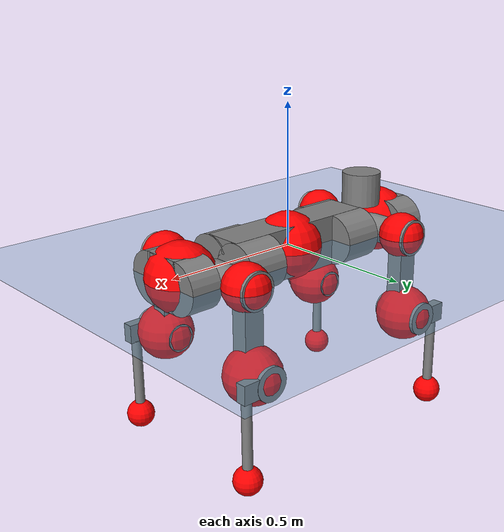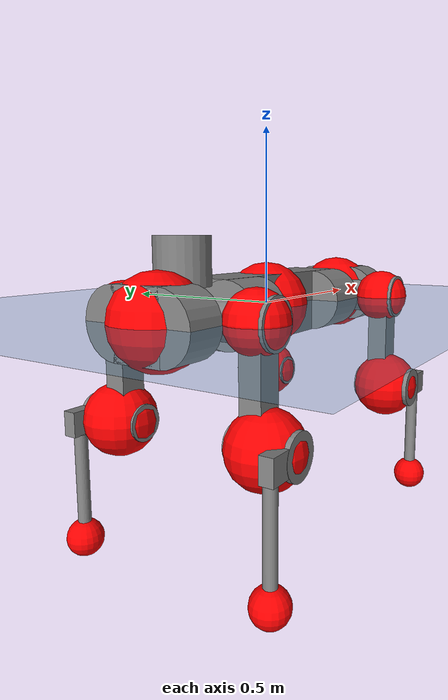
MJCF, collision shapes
<mujoco model="anymal_c">
  <compiler angle="radian" assetdir="assets" balanceinertia="true" inertiafromgeom="false"/>

  <option timestep="0.005" density="1.2" viscosity="2e-05"/>

  <size nkey="1"/>

  <visual>
    <quality shadowsize="8192"/>
    <map shadowclip="0.5"/>
  </visual>

  <default>
    <default class="/">
      <material specular="0" shininess="0.25"/>
      <geom contype="0" conaffinity="0" group="1" solref="-1000 -80"/>
      <site size="0.01 0.005 0.005" group="5"/>
      <general forcelimited="true" forcerange="-80 80" biastype="affine" gainprm="80" biasprm="0 -80 -2"/>
      <default class="anymal_c">
        <joint armature="0.01" damping="0.01" frictionloss="0.1"/>
        <default class="visual">
          <geom type="mesh" group="2"/>
          <default class="visual_zflip"/>
        </default>
        <default class="collision">
          <geom type="cylinder" group="3"/>
          <default class="foot">
            <geom size="0.03 0 0" type="sphere" condim="6" priority="1" friction="0.8 0.02 0.01" solimp="0.015 1 0.03"/>
          </default>
        </default>
      </default>
      <default class="reward_collision_sphere">
        <geom group="5" rgba="1 0 0 1"/>
      </default>
    </default>
  </default>

  <asset>
    <texture type="skybox" colorspace="auto" name="//unnamed_texture_0" builtin="gradient" rgb1="0.95 0.95 0.95" rgb2="0.95 0.95 0.95" width="100" height="600"/>
    <texture type="2d" colorspace="auto" name="texplane" builtin="checker" rgb1="0.345 0.575 0.748" rgb2="0.345 0.575 0.748" markrgb="1 1 1" width="512" height="512"/>
    <texture type="2d" colorspace="linear" name="base" file="base.png"/>
    <texture type="2d" colorspace="linear" name="top_shell" file="top_shell.png"/>
    <texture type="2d" colorspace="linear" name="bottom_shell" file="bottom_shell.png"/>
    <texture type="2d" colorspace="linear" name="remote" file="remote.png"/>
    <texture type="2d" colorspace="linear" name="hatch" file="hatch.png"/>
    <texture type="2d" colorspace="linear" name="handle" file="handle.png"/>
    <texture type="2d" colorspace="linear" name="face" file="face.png"/>
    <texture type="2d" colorspace="linear" name="battery" file="battery.png"/>
    <texture type="2d" colorspace="linear" name="lidar_cage" file="lidar_cage.png"/>
    <texture type="2d" colorspace="linear" name="depth_camera" file="depth_camera.png"/>
    <texture type="2d" colorspace="linear" name="wide_angle_camera" file="wide_angle_camera.png"/>
    <texture type="2d" colorspace="linear" name="lidar" file="lidar.png"/>
    <texture type="2d" colorspace="linear" name="drive" file="drive.png"/>
    <texture type="2d" colorspace="linear" name="hip_l" file="hip_l.png"/>
    <texture type="2d" colorspace="linear" name="shank_l" file="shank_l.png"/>
    <texture type="2d" colorspace="linear" name="foot" file="foot.png"/>
    <texture type="2d" colorspace="linear" name="thigh" file="thigh.png"/>
    <texture type="2d" colorspace="linear" name="shank_r" file="shank_r.png"/>
    <texture type="2d" colorspace="linear" name="hip_r" file="hip_r.png"/>
    <material name="MatPlane" class="/" texture="texplane" texuniform="true" texrepeat="2 2" specular="0.9" shininess="0.5"/>
    <material name="black_plastic" class="/" rgba="0.007 0.007 0.007 1"/>
    <material name="green" class="/" rgba="0.052 0.178 0.033 1"/>
    <material name="red" class="/" rgba="0.178 0.006 0.005 1"/>
    <material name="yellow" class="/" rgba="0.178 0.119 0.006 1"/>
    <material name="lwl" class="/" rgba="0.8 0.8 0.8 1"/>
    <material name="base" class="/" texture="base"/>
    <material name="top_shell" class="/" texture="top_shell"/>
    <material name="bottom_shell" class="/" texture="bottom_shell"/>
    <material name="hip_l" class="/" texture="hip_l"/>
    <material name="thigh" class="/" texture="thigh"/>
    <material name="shank_l" class="/" texture="shank_l"/>
    <material name="foot" class="/" texture="foot"/>
    <material name="hip_r" class="/" texture="hip_r"/>
    <material name="shank" class="/" texture="shank_r"/>
    <material name="hatch" class="/" texture="hatch"/>
    <material name="remote" class="/" texture="remote"/>
    <material name="handle" class="/" texture="handle"/>
    <material name="face" class="/" texture="face"/>
    <material name="depth_camera" class="/" texture="depth_camera"/>
    <material name="wide_angle_camera" class="/" texture="wide_angle_camera"/>
    <material name="battery" class="/" texture="battery"/>
    <material name="lidar_cage" class="/" texture="lidar_cage"/>
    <material name="lidar" class="/" texture="lidar"/>
    <material name="drive" class="/" texture="drive"/>
    <mesh name="base_0" class="/" file="base_0.obj"/>
    <mesh name="base_1" class="/" file="base_1.obj"/>
    <mesh name="base_2" class="/" file="base_2.obj"/>
    <mesh name="base_3" class="/" file="base_3.obj"/>
    <mesh name="base_4" class="/" file="base_4.obj"/>
    <mesh name="base_5" class="/" file="base_5.obj"/>
    <mesh name="top_shell" class="/" file="top_shell.obj"/>
    <mesh name="bottom_shell" class="/" file="bottom_shell.obj"/>
    <mesh name="remote" class="/" file="remote.obj"/>
    <mesh name="handle" class="/" file="handle.obj"/>
    <mesh name="face" class="/" file="face.obj"/>
    <mesh name="wide_angle_camera" class="/" file="wide_angle_camera.obj"/>
    <mesh name="depth_camera" class="/" file="depth_camera.obj"/>
    <mesh name="battery" class="/" file="battery.obj"/>
    <mesh name="lidar_cage" class="/" file="lidar_cage.obj"/>
    <mesh name="lidar" class="/" file="lidar.obj"/>
    <mesh name="drive" class="/" file="drive.obj"/>
    <mesh name="hip_l" class="/" file="hip_l.obj"/>
    <mesh name="thigh" class="/" file="thigh.obj"/>
    <mesh name="shank_l" class="/" file="shank_l.obj"/>
    <mesh name="foot" class="/" file="foot.obj"/>
    <mesh name="hip_r" class="/" file="hip_r.obj"/>
    <mesh name="hatch" class="/" file="hatch.obj"/>
    <mesh name="shank_r" class="/" file="shank_r.obj"/>
  </asset>

  <worldbody>
    <geom name="floor" class="/" size="100 100 0.125" type="plane" group="0" material="MatPlane"/>
    <light name="toplight_shadow" class="/" pos="0 0 5" dir="0.0990148 0.0990148 -0.990148" type="directional" ambient="0.04 0.04 0.04" diffuse="0.55 0.55 0.55" specular="0.12 0.12 0.12"/>
    <light name="toplight_fill" class="/" pos="0 0 5" dir="0.0990148 0.0990148 -0.990148" type="directional" castshadow="false" ambient="0.04 0.04 0.04" diffuse="0.3 0.3 0.3" specular="0.08 0.08 0.08"/>
    <body name="trunk" childclass="anymal_c" pos="0.000478156 7.44089e-05 -0.0020711" quat="1 0.000801083 -0.000341463 0.000156257">
      <inertial pos="0.00268385 0.000794562 0.0524077" quat="0.506347 0.494912 0.498928 0.499745" mass="20.0447" diaginertia="0.757164 0.533623 0.261302"/>
      <joint name="//unnamed_joint_0" type="free" armature="0" damping="0" frictionloss="0"/>
      <geom name="//unnamed_geom_1" class="visual" material="green" mesh="base_0"/>
      <geom name="//unnamed_geom_2" class="visual" material="yellow" mesh="base_1"/>
      <geom name="//unnamed_geom_3" class="visual" material="red" mesh="base_2"/>
      <geom name="//unnamed_geom_4" class="visual" material="black_plastic" mesh="base_3"/>
      <geom name="//unnamed_geom_5" class="visual" material="lwl" mesh="base_4"/>
      <geom name="//unnamed_geom_6" class="visual" material="base" mesh="base_5"/>
      <geom name="trunk_1" class="collision" size="0.292529 0.0706104 0.0907848" type="box"/>
      <geom name="trunk_2" class="collision" size="0.0907848 0.0731322" pos="0.224057 0.0674713 0" quat="0.707107 0 0.707107 0"/>
      <geom name="trunk_3" class="collision" size="0.0907848 0.0731322" pos="-0.224057 0.0674713 0" quat="0.707107 0 0.707107 0"/>
      <geom name="trunk_4" class="collision" size="0.0907848 0.0731322" pos="0.224057 -0.0674713 0" quat="0.707107 0 0.707107 0"/>
      <geom name="trunk_5" class="collision" size="0.0907848 0.0731322" pos="-0.224057 -0.0674713 0" quat="0.707107 0 0.707107 0"/>
      <geom name="//unnamed_geom_12" class="visual" material="top_shell" mesh="top_shell"/>
      <geom name="//unnamed_geom_13" class="visual" material="bottom_shell" mesh="bottom_shell"/>
      <geom name="//unnamed_geom_14" class="visual" material="remote" mesh="remote"/>
      <geom name="//unnamed_geom_15" class="visual" material="handle" mesh="handle"/>
      <geom name="//unnamed_geom_16" class="visual" pos="0.426995 0 0" quat="1 0 0 0" material="face" mesh="face"/>
      <geom name="trunk_6" class="collision" size="0.0554796 0.0706104 0.0907848" pos="0.483653 0 0" type="box"/>
      <geom name="//unnamed_geom_18" class="collision" size="0.0907848 0.0554796" pos="0.483653 0.0674713 0" quat="0.707107 0 0.707107 0"/>
      <geom name="//unnamed_geom_19" class="collision" size="0.0907848 0.0554796" pos="0.483653 -0.0674713 0" quat="0.707107 0 0.707107 0"/>
      <geom name="//unnamed_geom_20" class="visual" pos="0.475567 0 -0.0301536" quat="0.965926 0 0.258819 0" material="depth_camera" mesh="depth_camera"/>
      <geom name="//unnamed_geom_21" class="visual" pos="0.528465 0 0.0154511" material="wide_angle_camera" mesh="wide_angle_camera"/>
      <geom name="//unnamed_geom_22" class="visual_zflip" pos="-0.426995 0 0" quat="0 0 0 1" material="face" mesh="face"/>
      <geom name="trunk_7" class="collision" size="0.0554796 0.0706104 0.0907848" pos="-0.483653 0 0" quat="0 0 0 1" type="box"/>
      <geom name="//unnamed_geom_24" class="collision" size="0.0907848 0.0554796" pos="-0.483653 -0.0674713 0" quat="0 -0.707107 0 0.707107"/>
      <geom name="//unnamed_geom_25" class="collision" size="0.0907848 0.0554796" pos="-0.483653 0.0674713 0" quat="0 -0.707107 0 0.707107"/>
      <geom name="//unnamed_geom_26" class="visual" pos="-0.475567 0 -0.0301536" quat="0 -0.258819 0 0.965926" material="depth_camera" mesh="depth_camera"/>
      <geom name="//unnamed_geom_27" class="visual_zflip" pos="-0.528465 0 0.0154511" quat="0 0 0 1" material="wide_angle_camera" mesh="wide_angle_camera"/>
      <geom name="//unnamed_geom_28" class="visual" material="battery" mesh="battery"/>
      <geom name="//unnamed_geom_29" class="visual" pos="0 0.0728285 0.0299685" quat="0.683013 -0.183013 0.183013 0.683013" material="depth_camera" mesh="depth_camera"/>
      <geom name="//unnamed_geom_30" class="visual" pos="0 -0.0728285 0.0299685" quat="0.683013 0.183013 0.183013 -0.683013" material="depth_camera" mesh="depth_camera"/>
      <geom name="//unnamed_geom_31" class="visual" pos="-0.374973 0 0.0758622" quat="1 0 0 0" material="lidar_cage" mesh="lidar_cage"/>
      <geom name="trunk_8" class="collision" size="0.0706104 0.0605232" pos="-0.374973 0 0.137791"/>
      <geom name="//unnamed_geom_33" class="visual" pos="-0.374973 -2.60355e-05 0.14677" quat="0.707107 0 0 -0.707107" material="lidar" mesh="lidar"/>
      <geom name="//unnamed_geom_34" class="visual" pos="0.308941 0.100267 -1.17753e-09" quat="0.258819 0.965926 0 0" material="drive" mesh="drive"/>
      <geom name="//unnamed_geom_35" class="visual" pos="0.308941 -0.100267 1.17753e-09" quat="0.258819 -0.965926 0 0" material="drive" mesh="drive"/>
      <geom name="//unnamed_geom_36" class="visual" pos="-0.308941 0.100267 1.17753e-09" quat="0 0 0.965926 -0.258819" material="drive" mesh="drive"/>
      <geom name="//unnamed_geom_37" class="visual" pos="-0.308941 -0.100267 -1.17753e-09" quat="0 0 -0.965926 -0.258819" material="drive" mesh="drive"/>
      <geom name="//unnamed_geom_38" class="visual" pos="0.119497 0 0.0753461" quat="1 0 0 0" material="hatch" mesh="hatch"/>
      <geom name="//unnamed_geom_39" class="reward_collision_sphere" size="0.121046"/>
      <geom name="//unnamed_geom_40" class="reward_collision_sphere" size="0.121046" pos="0.463566 0 0"/>
      <geom name="//unnamed_geom_41" class="reward_collision_sphere" size="0.121046" pos="-0.463566 0 0"/>
      <site name="imu" pos="0.256113 0.00596315 0.0439284" size="0.0100872"/>
      <camera name="track" pos="0 -1.92775 0" quat="0.707107 0.707107 0 0" mode="trackcom"/>
      <camera name="ego_camera" pos="0.463566 0 -0.0412855" quat="-0.5 -0.5 0.5 0.5"/>
      <body name="LF_HIP" pos="0.309068 0.0995802 0.000733389" quat="0.258789 0.965934 8.02335e-05 -8.73535e-05">
        <inertial pos="0.0568475 -0.0146992 -0.0104181" quat="-0.129909 0.71406 -0.127068 0.676088" mass="2.87677" diaginertia="0.006876 0.00415618 0.00387938"/>
        <joint name="LF_HAA" pos="0 0 0" axis="0.999994 -0.00189797 -0.00285262" range="-0.713695 0.475856" armature="0.0100792" damping="0.00794351" frictionloss="0.0974575"/>
        <geom name="//unnamed_geom_42" class="visual" pos="0 -6.9269e-05 1.13774e-05" quat="0.258819 -0.965926 0 0" material="hip_l" mesh="hip_l"/>
        <geom name="//unnamed_geom_43" class="visual" pos="0.0617057 -0.0739213 -0.0431834" quat="0.183013 -0.683013 0.683013 0.183013" material="drive" mesh="drive"/>
        <geom name="//unnamed_geom_44" class="collision" size="0.050436 0.0706104" pos="0.0617057 -0.0115278 -0.00712692" quat="-0.353553 -0.612372 0.612372 -0.353553"/>
        <body name="LF_THIGH" pos="0.0612662 -0.070576 -0.0422795" quat="0.183051 -0.683038 0.682972 0.183033">
          <inertial pos="0.0318939 -0.000206726 -0.253644" quat="0.993001 -0.00898592 -0.0799894 0.0864285" mass="3.08279" diaginertia="0.034423 0.0244369 0.00476114"/>
          <joint name="LF_HFE" pos="0 0 0" axis="0.999999 -0.000327161 -0.000954814" stiffness="0.0045772" range="-3.13396 3.14055" armature="0.00989803" damping="0.00977937" frictionloss="0.101235"/>
          <geom name="//unnamed_geom_45" class="visual" pos="0.0013185 2.07765e-06 0" quat="0.707107 0 0 -0.707107" material="thigh" mesh="thigh"/>
          <geom name="//unnamed_geom_46" class="collision" size="0.0655668 0.0403488" pos="0.0412058 0 0" quat="0.5 0.5 -0.5 -0.5"/>
          <geom name="//unnamed_geom_47" class="collision" size="0.037827 0.0302616 0.142546" pos="0.0309044 0 -0.145856" quat="0.707107 0 0 -0.707107" type="box"/>
          <geom name="//unnamed_geom_48" class="visual" pos="0.103324 0 -0.29416" quat="1 0 0 0" material="drive" mesh="drive"/>
          <geom name="//unnamed_geom_49" class="collision" size="0.050436 0.0706104" pos="0.0312134 0 -0.29416" quat="0.707107 0 0.707107 0"/>
          <geom name="//unnamed_geom_50" class="reward_collision_sphere" size="0.0806976" pos="0.0257536 0 0"/>
          <body name="LF_SHANK" pos="0.10264 -0.000784136 -0.294463" quat="1 -1.09089e-05 1.08458e-05 -1.32412e-05">
            <inertial pos="0.00329116 -0.0608771 -0.0833305" quat="0.992993 -0.115456 -0.0010216 -0.0251813" mass="0.603494" diaginertia="0.0115557 0.00774638 0.00131213"/>
            <joint name="LF_KFE" pos="0 0 0" axis="0.999999 0.00137377 0.000142051" range="-3.18556 3.13023" armature="0.0102193" damping="0.0104494" frictionloss="0.111768"/>
            <geom name="//unnamed_geom_51" class="visual" pos="0.000429935 0.00229244 0" quat="0.707107 0 0 -0.707107" material="shank_l" mesh="shank_l"/>
            <geom name="LF_kfe_act" class="collision" size="0.0605232 0.0201744" pos="0.0206029 0 0" quat="0.5 0.5 -0.5 -0.5"/>
            <geom name="//unnamed_geom_53" class="collision" size="0.0580004 0.0340443 0.0191657" pos="0.0206029 -0.0554219 0" quat="0.5 0.5 -0.5 -0.5" type="box"/>
            <geom name="//unnamed_geom_54" class="visual" pos="0.0134433 -0.0840342 -0.348832" quat="0.382683 0 0 -0.92388" material="foot" mesh="foot"/>
            <geom name="LF_calf" class="collision" size="0.0176526 0.142484" pos="0.0134434 -0.0847729 -0.174416" quat="0.707107 0 0 -0.707107"/>
            <geom name="LF_foot" class="foot" size="0.0300322" pos="0.0134434 -0.0847729 -0.325609" quat="0.707107 0 0 -0.707107"/>
            <geom name="//unnamed_geom_57" class="reward_collision_sphere" size="0.100872" pos="-0.0515073 0 0"/>
            <geom name="//unnamed_geom_58" class="reward_collision_sphere" size="0.050436" pos="0.0134434 -0.0847729 -0.325609"/>
            <site name="LF_foot" class="foot" pos="0.0134434 -0.0847729 -0.325609" quat="0.707107 0 0 -0.707107" size="0.0100872"/>
          </body>
        </body>
      </body>
      <body name="RF_HIP" pos="0.310133 -0.101184 0.000321735" quat="0.258472 -0.966018 0.000512321 -0.000798582">
        <inertial pos="0.059522 0.0150694 -0.00864345" quat="0.144138 0.676428 0.123077 0.711703" mass="2.96165" diaginertia="0.00687902 0.00415435 0.00391554"/>
        <joint name="RF_HAA" pos="0 0 0" axis="0.99999 0.00238156 0.00380697" range="-0.534226 0.735374" armature="0.0098235" damping="0.0128323" frictionloss="0.100515"/>
        <geom name="//unnamed_geom_59" class="visual" pos="0 6.92684e-05 1.13773e-05" quat="0.258819 0.965926 0 0" material="hip_r" mesh="hip_r"/>
        <geom name="//unnamed_geom_60" class="visual" pos="0.0617057 0.0739213 -0.0431834" quat="0.183013 0.683013 0.683013 -0.183013" material="drive" mesh="drive"/>
        <geom name="//unnamed_geom_61" class="collision" size="0.050436 0.0706104" pos="0.0617057 0.0115278 -0.00712692" quat="-0.353553 0.612372 0.612372 0.353553"/>
        <body name="RF_THIGH" pos="0.061641 0.0700176 -0.0428738" quat="0.183473 0.682942 0.682968 -0.182983">
          <inertial pos="0.0327058 -0.00025215 -0.25275" quat="0.993142 -0.00443443 -0.0800028 0.0851433" mass="3.18464" diaginertia="0.035141 0.0246187 0.00485187"/>
          <joint name="RF_HFE" pos="0 0 0" axis="1 -0.000303047 -0.000633947" stiffness="0.00754787" range="-3.14491 3.14842" armature="0.0106066" damping="0" frictionloss="0.0966841"/>
          <geom name="//unnamed_geom_62" class="visual" pos="0.0013185 2.07765e-06 0" quat="0.707107 0 0 -0.707107" material="thigh" mesh="thigh"/>
          <geom name="//unnamed_geom_63" class="collision" size="0.0655668 0.0403488" pos="0.0412058 0 0" quat="0.5 0.5 0.5 0.5"/>
          <geom name="//unnamed_geom_64" class="collision" size="0.037827 0.0302616 0.142546" pos="0.0309044 0 -0.145856" quat="0.707107 0 0 0.707107" type="box"/>
          <geom name="//unnamed_geom_65" class="visual" pos="0.103324 0 -0.29416" quat="1 0 0 0" material="drive" mesh="drive"/>
          <geom name="//unnamed_geom_66" class="collision" size="0.050436 0.0706104" pos="0.0312134 0 -0.29416" quat="0.707107 0 0.707107 0"/>
          <geom name="//unnamed_geom_67" class="reward_collision_sphere" size="0.0806976" pos="0.0257536 0 0"/>
          <body name="RF_SHANK" pos="0.101054 -4.35768e-05 -0.294341" quat="1 1.194e-05 -8.67908e-05 -3.89981e-05">
            <inertial pos="0.0062041 0.0574462 -0.082171" quat="0.992383 0.122078 0.00139666 0.0164955" mass="0.589335" diaginertia="0.0114959 0.00765536 0.00128563"/>
            <joint name="RF_KFE" pos="0 0 0" axis="0.999994 0.00276793 0.00211921" stiffness="0.00159657" range="-3.13918 3.12778" armature="0.0100262" damping="0.00306098" frictionloss="0.104981"/>
            <geom name="//unnamed_geom_68" class="visual" pos="0.000429933 -0.00229243 0" quat="0.707107 0 0 0.707107" material="shank" mesh="shank_r"/>
            <geom name="RF_kfe_act" class="collision" size="0.0605232 0.0201744" pos="0.0206029 0 0" quat="0.5 0.5 0.5 0.5"/>
            <geom name="//unnamed_geom_70" class="collision" size="0.0580004 0.0340443 0.0191657" pos="0.0206029 0.0554219 0" quat="0.5 0.5 0.5 0.5" type="box"/>
            <geom name="//unnamed_geom_71" class="visual" pos="0.0134435 0.0840342 -0.348832" quat="0.382683 0 0 0.92388" material="foot" mesh="foot"/>
            <geom name="RF_calf" class="collision" size="0.0176526 0.142484" pos="0.0134434 0.0847729 -0.174416" quat="0.707107 0 0 0.707107"/>
            <geom name="RF_foot" class="foot" size="0.0291096" pos="0.0134434 0.0847729 -0.325609" quat="0.707107 0 0 0.707107"/>
            <geom name="//unnamed_geom_74" class="reward_collision_sphere" size="0.100872" pos="-0.0515073 0 0"/>
            <geom name="//unnamed_geom_75" class="reward_collision_sphere" size="0.050436" pos="0.0134434 0.0847729 -0.325609"/>
            <site name="RF_foot" class="foot" pos="0.0134434 0.0847729 -0.325609" quat="0.707107 0 0 0.707107" size="0.0100872"/>
          </body>
        </body>
      </body>
      <body name="LH_HIP" pos="-0.308645 0.100275 0.0012322" quat="-0.000335659 0.000217462 0.965825 -0.259193">
        <inertial pos="0.0593451 0.0128476 -0.010762" quat="0.135739 0.67585 0.125986 0.713392" mass="2.85009" diaginertia="0.00690555 0.00406372 0.00384137"/>
        <joint name="LH_HAA" pos="0 0 0" axis="0.999961 0.00675718 0.00570268" range="-0.523071 0.757474" armature="0.0107158" damping="0.0111501" frictionloss="0.0999436"/>
        <geom name="//unnamed_geom_76" class="visual" pos="0 6.92684e-05 1.13773e-05" quat="-0.258819 -0.965926 0 0" material="hip_r" mesh="hip_r"/>
        <geom name="//unnamed_geom_77" class="visual" pos="0.0617057 0.0739213 -0.0431834" quat="0.183013 0.683013 0.683013 -0.183013" material="drive" mesh="drive"/>
        <geom name="//unnamed_geom_78" class="collision" size="0.050436 0.0706104" pos="0.0617057 0.0115278 -0.00712692" quat="-0.353553 0.612372 0.612372 0.353553"/>
        <body name="LH_THIGH" pos="0.0614654 0.0688091 -0.0413733" quat="0.183362 0.682893 0.682967 -0.183282">
          <inertial pos="0.0340569 -0.000628416 -0.255549" quat="0.992763 -0.00540874 -0.0806842 0.0887812" mass="3.2369" diaginertia="0.0369093 0.025705 0.00505421"/>
          <joint name="LH_HFE" pos="0 0 0" axis="0.999938 -0.00886659 -0.00668303" range="-3.14208 3.14132" armature="0.0101451" damping="0" frictionloss="0.0962234"/>
          <geom name="//unnamed_geom_79" class="visual" pos="0.0013185 2.07765e-06 0" quat="0.707107 0 0 -0.707107" material="thigh" mesh="thigh"/>
          <geom name="//unnamed_geom_80" class="collision" size="0.0655668 0.0403488" pos="0.0412058 0 0" quat="0.5 0.5 -0.5 -0.5"/>
          <geom name="//unnamed_geom_81" class="collision" size="0.037827 0.0302616 0.142546" pos="0.0309044 0 -0.145856" quat="0.707107 0 0 -0.707107" type="box"/>
          <geom name="//unnamed_geom_82" class="visual" pos="0.103324 0 -0.29416" quat="1 0 0 0" material="drive" mesh="drive"/>
          <geom name="//unnamed_geom_83" class="collision" size="0.050436 0.0706104" pos="0.0312134 0 -0.29416" quat="0.707107 0 0.707107 0"/>
          <geom name="//unnamed_geom_84" class="reward_collision_sphere" size="0.0806976" pos="0.0257536 0 0"/>
          <body name="LH_SHANK" pos="0.103495 0.00018761 -0.295777" quat="1 -2.43732e-05 0.000217898 -0.000552976">
            <inertial pos="0.00363965 0.0589425 -0.0854015" quat="0.99345 0.111143 -0.00751343 0.0254555" mass="0.602558" diaginertia="0.0117394 0.00772379 0.00128959"/>
            <joint name="LH_KFE" pos="0 0 0" axis="1 -0.000482945 -0.00083078" range="-3.13764 3.09447" armature="0.0109139" damping="0" frictionloss="0.09983"/>
            <geom name="//unnamed_geom_85" class="visual" pos="0.000429933 -0.00229243 0" quat="-0.707107 0 0 -0.707107" material="shank" mesh="shank_r"/>
            <geom name="LH_kfe_act" class="collision" size="0.0605232 0.0201744" pos="0.0206029 0 0" quat="0.5 0.5 -0.5 -0.5"/>
            <geom name="//unnamed_geom_87" class="collision" size="0.0580004 0.0340443 0.0191657" pos="0.0206029 0.0554219 0" quat="0.5 0.5 -0.5 -0.5" type="box"/>
            <geom name="//unnamed_geom_88" class="visual" pos="0.0134435 0.0840342 -0.348832" quat="-0.382683 0 0 -0.92388" material="foot" mesh="foot"/>
            <geom name="LH_calf" class="collision" size="0.0176526 0.142484" pos="0.0134434 0.0847729 -0.174416" quat="0.707107 0 0 -0.707107"/>
            <geom name="LH_foot" class="foot" size="0.0305116" pos="0.0134434 0.0847729 -0.325609" quat="0.707107 0 0 -0.707107"/>
            <geom name="//unnamed_geom_91" class="reward_collision_sphere" size="0.100872" pos="-0.0515073 0 0"/>
            <geom name="//unnamed_geom_92" class="reward_collision_sphere" size="0.050436" pos="0.0134434 0.0847729 -0.325609"/>
            <site name="LH_foot" class="foot" pos="0.0134434 0.0847729 -0.325609" quat="0.707107 0 0 -0.707107" size="0.0100872"/>
          </body>
        </body>
      </body>
      <body name="RH_HIP" pos="-0.306595 -0.100167 0.00172654" quat="-0.000193917 1.09254e-05 -0.965915 -0.258859">
        <inertial pos="0.0574312 -0.0145276 -0.0086517" quat="-0.120758 0.707632 -0.13477 0.683016" mass="2.84297" diaginertia="0.00713325 0.00418203 0.00392166"/>
        <joint name="RH_HAA" pos="0 0 0" axis="0.999921 -0.0104407 0.00706489" range="-0.705808 0.492853" armature="0.0100316" damping="0.0108356" frictionloss="0.112302"/>
        <geom name="//unnamed_geom_93" class="visual" pos="0 -6.9269e-05 1.13774e-05" quat="-0.258819 0.965926 0 0" material="hip_l" mesh="hip_l"/>
        <geom name="//unnamed_geom_94" class="visual" pos="0.0617057 -0.0739213 -0.0431834" quat="-0.183013 0.683013 -0.683013 -0.183013" material="drive" mesh="drive"/>
        <geom name="//unnamed_geom_95" class="collision" size="0.050436 0.0706104" pos="0.0617057 -0.0115278 -0.00712692" quat="0.353553 0.612372 -0.612372 0.353553"/>
        <body name="RH_THIGH" pos="0.061105 -0.0699532 -0.0434836" quat="-0.183005 0.682981 -0.683042 -0.183029">
          <inertial pos="0.0309544 0.000628175 -0.254836" quat="0.993157 -0.00518928 -0.0807171 0.0842407" mass="3.09799" diaginertia="0.0360486 0.0252105 0.00492925"/>
          <joint name="RH_HFE" pos="0 0 0" axis="0.999992 0.00395464 -0.000217289" range="-3.14765 3.13085" armature="0.0101186" damping="0.0135686" frictionloss="0.104135"/>
          <geom name="//unnamed_geom_96" class="visual" pos="0.0013185 2.07765e-06 0" quat="0.707107 0 0 -0.707107" material="thigh" mesh="thigh"/>
          <geom name="//unnamed_geom_97" class="collision" size="0.0655668 0.0403488" pos="0.0412058 0 0" quat="0.5 0.5 0.5 0.5"/>
          <geom name="//unnamed_geom_98" class="collision" size="0.037827 0.0302616 0.142546" pos="0.0309044 0 -0.145856" quat="0.707107 0 0 0.707107" type="box"/>
          <geom name="//unnamed_geom_99" class="visual" pos="0.103324 0 -0.29416" quat="1 0 0 0" material="drive" mesh="drive"/>
          <geom name="//unnamed_geom_100" class="collision" size="0.050436 0.0706104" pos="0.0312134 0 -0.29416" quat="0.707107 0 0.707107 0"/>
          <geom name="//unnamed_geom_101" class="reward_collision_sphere" size="0.0806976" pos="0.0257536 0 0"/>
          <body name="RH_SHANK" pos="0.101105 0.000996265 -0.294881" quat="0.999999 0.000305062 -0.000857863 0.000645372">
            <inertial pos="0.00473393 -0.0588455 -0.083281" quat="0.993054 -0.114891 0.00715685 -0.0243498" mass="0.60223" diaginertia="0.0117146 0.00759281 0.00127696"/>
            <joint name="RH_KFE" pos="0 0 0" axis="0.999901 0.00472713 -0.0132851" range="-3.09496 3.14561" armature="0.0100282" damping="0" frictionloss="0.104432"/>
            <geom name="//unnamed_geom_102" class="visual" pos="0.000429935 0.00229244 0" quat="0.707107 0 0 -0.707107" material="shank_l" mesh="shank_l"/>
            <geom name="RH_kfe_act" class="collision" size="0.0605232 0.0201744" pos="0.0206029 0 0" quat="0.5 0.5 0.5 0.5"/>
            <geom name="//unnamed_geom_104" class="collision" size="0.0580004 0.0340443 0.0191657" pos="0.0206029 -0.0554219 0" quat="0.5 0.5 0.5 0.5" type="box"/>
            <geom name="//unnamed_geom_105" class="visual" pos="0.0134433 -0.0840342 -0.348832" quat="0.382683 0 0 -0.92388" material="foot" mesh="foot"/>
            <geom name="RH_calf" class="collision" size="0.0176526 0.142484" pos="0.0134434 -0.0847729 -0.174416" quat="0.707107 0 0 0.707107"/>
            <geom name="RH_foot" class="foot" size="0.030801" pos="0.0134434 -0.0847729 -0.325609" quat="0.707107 0 0 0.707107"/>
            <geom name="//unnamed_geom_108" class="reward_collision_sphere" size="0.100872" pos="-0.0515073 0 0"/>
            <geom name="//unnamed_geom_109" class="reward_collision_sphere" size="0.050436" pos="0.0134434 -0.0847729 -0.325609"/>
            <site name="RH_foot" class="foot" pos="0.0134434 -0.0847729 -0.325609" quat="0.707107 0 0 0.707107" size="0.0100872"/>
          </body>
        </body>
      </body>
    </body>
  </worldbody>

  <contact>
    <pair class="/" geom1="floor" geom2="LF_foot" name="//unnamed_contact_0"/>
    <pair class="/" geom1="floor" geom2="RF_foot" name="//unnamed_contact_1"/>
    <pair class="/" geom1="floor" geom2="LH_foot" name="//unnamed_contact_2"/>
    <pair class="/" geom1="floor" geom2="RH_foot" name="//unnamed_contact_3"/>
  </contact>

  <actuator>
    <general name="LF_HAA" class="/" joint="LF_HAA" forcerange="-81.7873 81.7873" gainprm="82.1021" biasprm="0 -82.1021 -1.97509"/>
    <general name="LF_HFE" class="/" joint="LF_HFE" forcerange="-80.0144 80.0144" gainprm="82.1021" biasprm="0 -82.1021 -1.97509"/>
    <general name="LF_KFE" class="/" joint="LF_KFE" forcerange="-79.8705 79.8705" gainprm="82.1021" biasprm="0 -82.1021 -1.97509"/>
    <general name="RF_HAA" class="/" joint="RF_HAA" forcerange="-80.3492 80.3492" gainprm="82.1021" biasprm="0 -82.1021 -1.97509"/>
    <general name="RF_HFE" class="/" joint="RF_HFE" forcerange="-80.636 80.636" gainprm="82.1021" biasprm="0 -82.1021 -1.97509"/>
    <general name="RF_KFE" class="/" joint="RF_KFE" forcerange="-81.5938 81.5938" gainprm="82.1021" biasprm="0 -82.1021 -1.97509"/>
    <general name="LH_HAA" class="/" joint="LH_HAA" forcerange="-81.9357 81.9357" gainprm="82.1021" biasprm="0 -82.1021 -1.97509"/>
    <general name="LH_HFE" class="/" joint="LH_HFE" forcerange="-75.1442 75.1442" gainprm="82.1021" biasprm="0 -82.1021 -1.97509"/>
    <general name="LH_KFE" class="/" joint="LH_KFE" forcerange="-86.6207 86.6207" gainprm="82.1021" biasprm="0 -82.1021 -1.97509"/>
    <general name="RH_HAA" class="/" joint="RH_HAA" forcerange="-81.0564 81.0564" gainprm="82.1021" biasprm="0 -82.1021 -1.97509"/>
    <general name="RH_HFE" class="/" joint="RH_HFE" forcerange="-83.6945 83.6945" gainprm="82.1021" biasprm="0 -82.1021 -1.97509"/>
    <general name="RH_KFE" class="/" joint="RH_KFE" forcerange="-79.8441 79.8441" gainprm="82.1021" biasprm="0 -82.1021 -1.97509"/>
  </actuator>

  <sensor>
    <gyro site="imu" name="imu_angular_velocity"/>
    <velocimeter site="imu" name="imu_linear_velocity"/>
    <framelinvel objtype="site" objname="LF_foot" name="LF_foot_global_linear_velocity"/>
    <framelinvel objtype="site" objname="RF_foot" name="RF_foot_global_linear_velocity"/>
    <framelinvel objtype="site" objname="LH_foot" name="LH_foot_global_linear_velocity"/>
    <framelinvel objtype="site" objname="RH_foot" name="RH_foot_global_linear_velocity"/>
  </sensor>

  <keyframe>
    <key name="home" qpos="0 0 0.55 1 0 0 0 0 0.4 -0.8 0 -0.4 0.8 0 -0.4 0.8 0 0.4 -0.8"/>
  </keyframe>
</mujoco>
